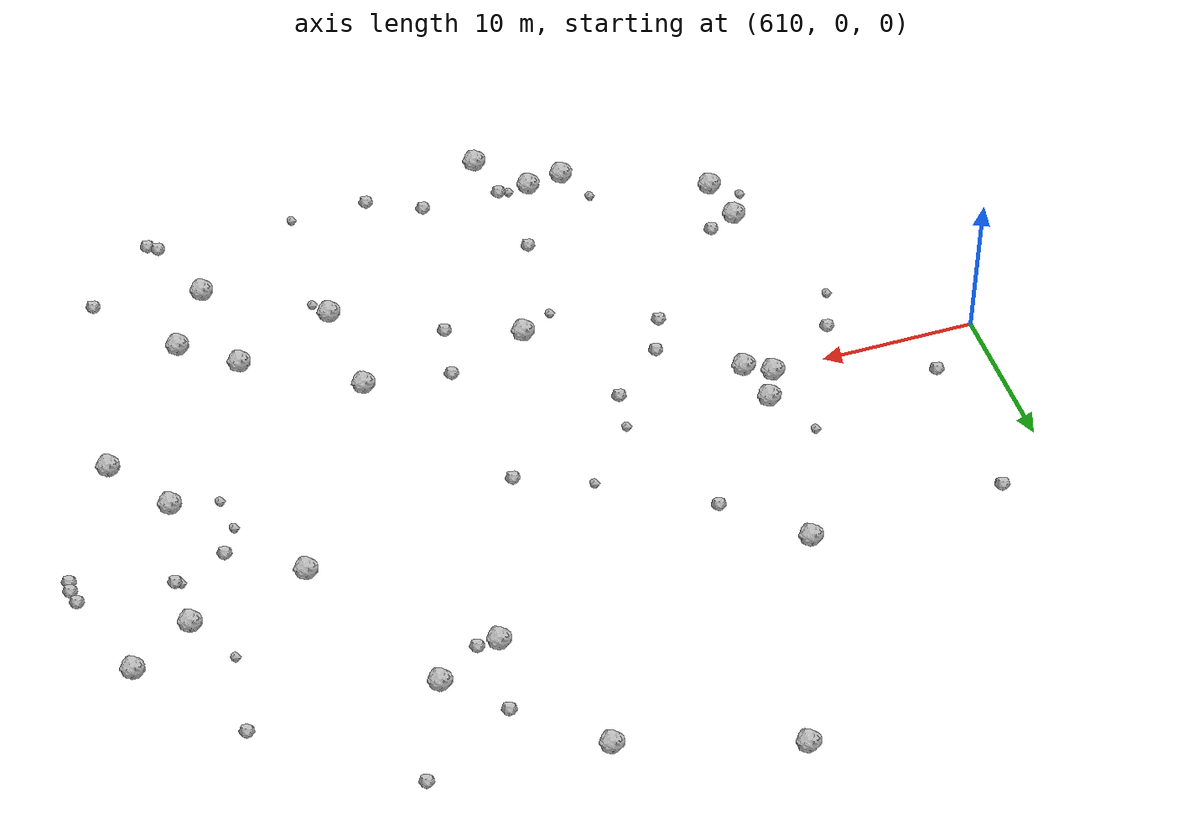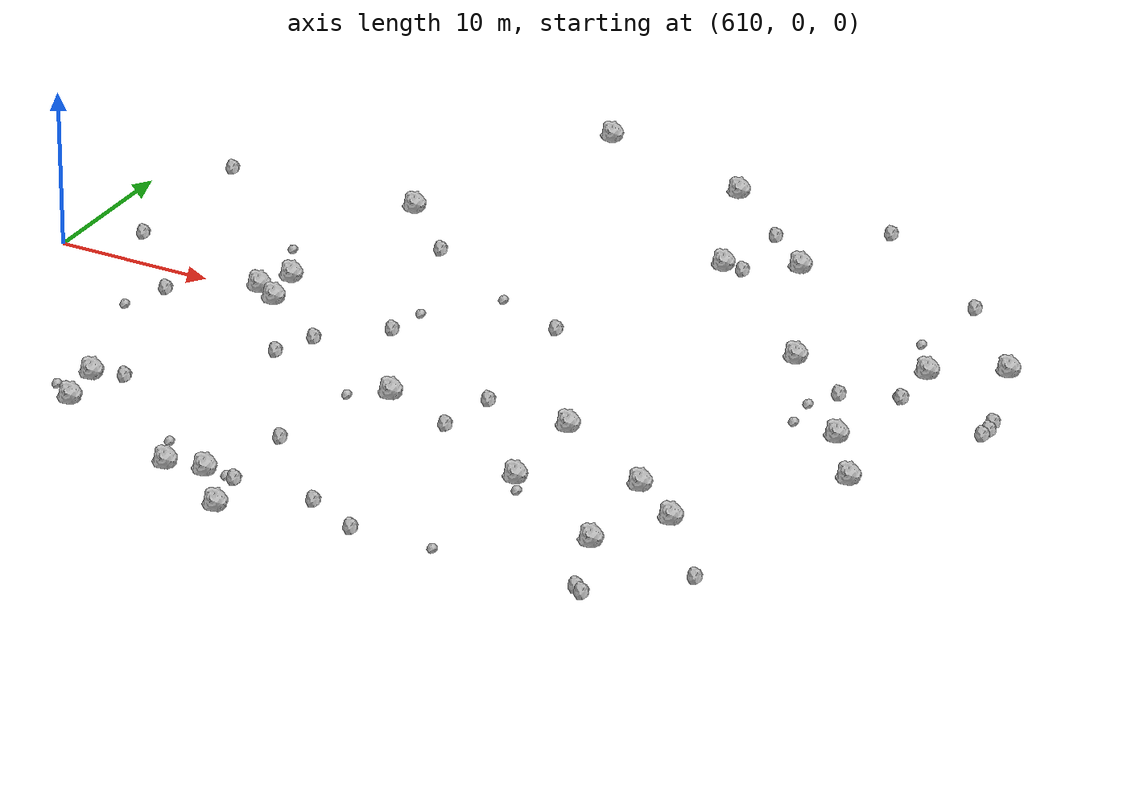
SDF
<sdf version="1.6">
 <world name="default">
  <include><uri>model://sun</uri></include>
  <model name="rock1_16_3">
   <include><uri>model://rock1</uri><pose>654.9008924886639 -10.77708683645151 0.5 0 0 0</pose></include>
  </model>
  <model name="rock1_16_4">
   <include><uri>model://rock1</uri><pose>624.5369041462761 2.3829035455917875 0.5 0 0 0</pose></include>
  </model>
  <model name="rock1_16_5">
   <include><uri>model://rock1</uri><pose>623.5286022486499 0.3193160461804325 0.5 0 0 0</pose></include>
  </model>
  <model name="rock1_16_6">
   <include><uri>model://rock1</uri><pose>637.2296391294972 -7.867903768765206 0.5 0 0 0</pose></include>
  </model>
  <model name="rock1_16_7">
   <include><uri>model://rock1</uri><pose>650.5544909493151 17.984099159813333 0.5 0 0 0</pose></include>
  </model>
  <model name="rock1_16_8">
   <include><uri>model://rock1</uri><pose>642.6602741959202 25.426674302227326 0.5 0 0 0</pose></include>
  </model>
  <model name="rock1_16_9">
   <include><uri>model://rock1</uri><pose>661.944565471743 -0.3462418735053987 0.5 0 0 0</pose></include>
  </model>
  <model name="rock1_16_10">
   <include><uri>model://rock1</uri><pose>632.0644815089986 28.84557570445383 0.5 0 0 0</pose></include>
  </model>
  <model name="rock1_16_11">
   <include><uri>model://rock1</uri><pose>630.3346124208014 -21.20112602723408 0.5 0 0 0</pose></include>
  </model>
  <model name="rock1_16_12">
   <include><uri>model://rock1</uri><pose>658.1998768708947 -13.411629809080111 0.5 0 0 0</pose></include>
  </model>
  <model name="rock1_16_13">
   <include><uri>model://rock1</uri><pose>625.1134872105728 -0.6440997228415064 0.5 0 0 0</pose></include>
  </model>
  <model name="rock1_16_14">
   <include><uri>model://rock1</uri><pose>655.5347581820726 -17.756916839167317 0.5 0 0 0</pose></include>
  </model>
  <model name="rock1_16_15">
   <include><uri>model://rock1</uri><pose>621.4323822919927 -17.145339535997067 0.5 0 0 0</pose></include>
  </model>
  <model name="rock1_16_16">
   <include><uri>model://rock1</uri><pose>635.3946801706923 -24.110252753324932 0.5 0 0 0</pose></include>
  </model>
  <model name="rock1_16_17">
   <include><uri>model://rock1</uri><pose>648.3799966374306 -13.315297810346255 0.5 0 0 0</pose></include>
  </model>
  <model name="rock1_16_18">
   <include><uri>model://rock1</uri><pose>632.7076229883854 -20.842156729104452 0.5 0 0 0</pose></include>
  </model>
  <model name="rock1_16_19">
   <include><uri>model://rock1</uri><pose>646.3842056593176 16.051283674226113 0.5 0 0 0</pose></include>
  </model>
  <model name="rock1_16_20">
   <include><uri>model://rock1</uri><pose>667.1164002970046 11.593671582865994 0.5 0 0 0</pose></include>
  </model>
  <model name="rock1_16_21">
   <include><uri>model://rock1</uri><pose>663.0982580256323 9.148379290476122 0.5 0 0 0</pose></include>
  </model>
  <model name="rock1_16_22">
   <include><uri>model://rock1</uri><pose>655.570186429872 7.281923031736959 0.5 0 0 0</pose></include>
  </model>
  <model name="rock1_16_23">
   <include><uri>model://rock1</uri><pose>664.7506436597964 -4.551511929733717 0.5 0 0 0</pose></include>
  </model>
  <model name="rock1_16_24">
   <include><uri>model://rock1</uri><pose>648.056923796687 -6.539151855883187 0.5 0 0 0</pose></include>
  </model>
  <model name="rock1_16_25">
   <include><uri>model://rock1</uri><pose>626.2760771130141 14.121177018721625 0.5 0 0 0</pose></include>
  </model>
  <model name="rock1_16_26">
   <include><uri>model://rock1</uri><pose>620.8817240273551 -13.967216262063758 0.5 0 0 0</pose></include>
  </model>
  <model name="rock2_16_0">
   <include><uri>model://rock2</uri><pose>634.4284216426277 -15.466779132464762 0.3 0 0 0</pose></include>
  </model>
  <model name="rock2_16_1">
   <include><uri>model://rock2</uri><pose>663.1211083916589 5.710710641054334 0.3 0 0 0</pose></include>
  </model>
  <model name="rock2_16_2">
   <include><uri>model://rock2</uri><pose>642.5359496585012 -5.8402499042173766 0.3 0 0 0</pose></include>
  </model>
  <model name="rock2_16_3">
   <include><uri>model://rock2</uri><pose>647.695108666461 16.021142344798122 0.3 0 0 0</pose></include>
  </model>
  <model name="rock2_16_4">
   <include><uri>model://rock2</uri><pose>669.1756442027058 4.501042206947986 0.3 0 0 0</pose></include>
  </model>
  <model name="rock2_16_5">
   <include><uri>model://rock2</uri><pose>613.6733447725114 3.2375761216857555 0.3 0 0 0</pose></include>
  </model>
  <model name="rock2_16_6">
   <include><uri>model://rock2</uri><pose>641.8423928825797 -9.638875555186658 0.3 0 0 0</pose></include>
  </model>
  <model name="rock2_16_7">
   <include><uri>model://rock2</uri><pose>618.8033693100804 -2.497861091139729 0.3 0 0 0</pose></include>
  </model>
  <model name="rock2_16_8">
   <include><uri>model://rock2</uri><pose>657.1966526291656 -22.546260291093333 0.3 0 0 0</pose></include>
  </model>
  <model name="rock2_16_9">
   <include><uri>model://rock2</uri><pose>669.0839858726363 3.783102814572466 0.3 0 0 0</pose></include>
  </model>
  <model name="rock2_16_10">
   <include><uri>model://rock2</uri><pose>668.9924337407532 5.4522745499780925 0.3 0 0 0</pose></include>
  </model>
  <model name="rock2_16_11">
   <include><uri>model://rock2</uri><pose>622.6737255372265 -13.239496575690094 0.3 0 0 0</pose></include>
  </model>
  <model name="rock2_16_12">
   <include><uri>model://rock2</uri><pose>613.6753781860256 13.621117501242637 0.3 0 0 0</pose></include>
  </model>
  <model name="rock2_16_13">
   <include><uri>model://rock2</uri><pose>629.7786689917901 -3.8398827050990576 0.3 0 0 0</pose></include>
  </model>
  <model name="rock2_16_14">
   <include><uri>model://rock2</uri><pose>662.3896702468485 -18.589899909580744 0.3 0 0 0</pose></include>
  </model>
  <model name="rock2_16_15">
   <include><uri>model://rock2</uri><pose>653.3692383387311 24.693036438828443 0.3 0 0 0</pose></include>
  </model>
  <model name="rock2_16_16">
   <include><uri>model://rock2</uri><pose>641.6447794663925 3.882205459932763 0.3 0 0 0</pose></include>
  </model>
  <model name="rock2_16_17">
   <include><uri>model://rock2</uri><pose>630.537908169979 9.846058788345523 0.3 0 0 0</pose></include>
  </model>
  <model name="rock2_16_18">
   <include><uri>model://rock2</uri><pose>657.7923120674191 -22.99594330137348 0.3 0 0 0</pose></include>
  </model>
  <model name="rock2_16_19">
   <include><uri>model://rock2</uri><pose>659.7852192009864 4.389823261843212 0.3 0 0 0</pose></include>
  </model>
  <model name="rock2_16_20">
   <include><uri>model://rock2</uri><pose>634.7088085859017 -20.932594487940776 0.3 0 0 0</pose></include>
  </model>
  <model name="rock2_16_21">
   <include><uri>model://rock2</uri><pose>662.0237166839617 18.01993393967257 0.3 0 0 0</pose></include>
  </model>
  <model name="rock2_16_22">
   <include><uri>model://rock2</uri><pose>647.3640840066915 21.121337887472464 0.3 0 0 0</pose></include>
  </model>
  <model name="rock2_16_23">
   <include><uri>model://rock2</uri><pose>643.2332022008025 -22.684289401009682 0.3 0 0 0</pose></include>
  </model>
  <model name="rock2_16_24">
   <include><uri>model://rock2</uri><pose>633.2619707943899 -0.7398160627609123 0.3 0 0 0</pose></include>
  </model>
  <model name="rock2_16_25">
   <include><uri>model://rock2</uri><pose>639.8530080956357 -20.97574900583896 0.3 0 0 0</pose></include>
  </model>
  <model name="rock2_16_26">
   <include><uri>model://rock2</uri><pose>628.6947880813512 -6.382051394378244 0.3 0 0 0</pose></include>
  </model>
  <model name="rock3_16_0">
   <include><uri>model://rock3</uri><pose>648.2596431899825 -22.592065374847877 0.2 0 0 0</pose></include>
  </model>
  <model name="rock3_16_1">
   <include><uri>model://rock3</uri><pose>649.0886157136995 -14.561200430312942 0.2 0 0 0</pose></include>
  </model>
  <model name="rock3_16_2">
   <include><uri>model://rock3</uri><pose>622.649759586863 5.6483838621321425 0.2 0 0 0</pose></include>
  </model>
  <model name="rock3_16_3">
   <include><uri>model://rock3</uri><pose>635.0067037198023 -9.126664685517927 0.2 0 0 0</pose></include>
  </model>
  <model name="rock3_16_4">
   <include><uri>model://rock3</uri><pose>617.6816941317167 -5.380396774964332 0.2 0 0 0</pose></include>
  </model>
  <model name="rock3_16_5">
   <include><uri>model://rock3</uri><pose>634.0239937178446 -20.802291120273686 0.2 0 0 0</pose></include>
  </model>
  <model name="rock3_16_6">
   <include><uri>model://rock3</uri><pose>662.7664979383444 5.82314129220407 0.2 0 0 0</pose></include>
  </model>
  <model name="rock3_16_7">
   <include><uri>model://rock3</uri><pose>658.6788866223881 2.5050081511106583 0.2 0 0 0</pose></include>
  </model>
  <model name="rock3_16_8">
   <include><uri>model://rock3</uri><pose>661.1708068777996 12.35625133028536 0.2 0 0 0</pose></include>
  </model>
  <model name="rock3_16_9">
   <include><uri>model://rock3</uri><pose>658.9348905226282 0.14701848986221933 0.2 0 0 0</pose></include>
  </model>
  <model name="rock3_16_10">
   <include><uri>model://rock3</uri><pose>619.697898643431 -15.90756298132208 0.2 0 0 0</pose></include>
  </model>
  <model name="rock3_16_11">
   <include><uri>model://rock3</uri><pose>629.0860943924456 -18.814986858336535 0.2 0 0 0</pose></include>
  </model>
  <model name="rock3_16_12">
   <include><uri>model://rock3</uri><pose>637.0212762395087 5.773995833194 0.2 0 0 0</pose></include>
  </model>
  <model name="rock3_16_13">
   <include><uri>model://rock3</uri><pose>633.6283597599795 1.8483471583956685 0.2 0 0 0</pose></include>
  </model>
 </world>
</sdf>
